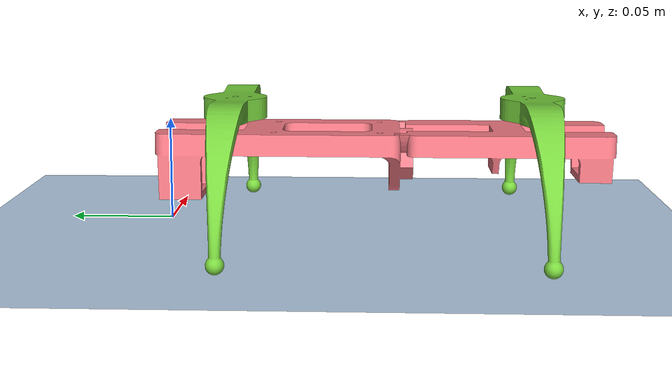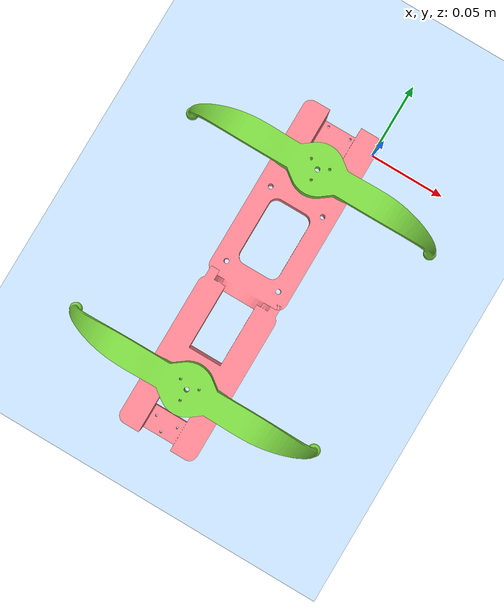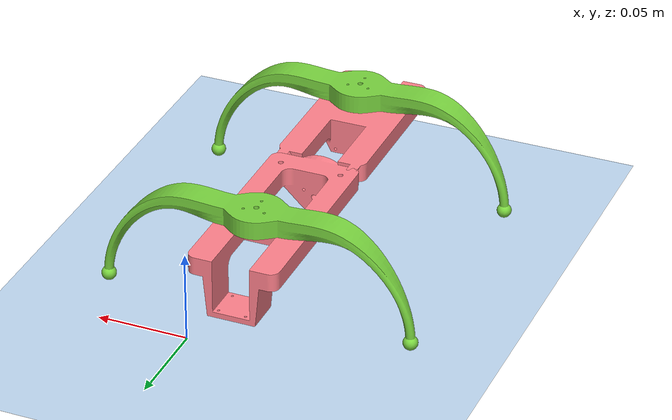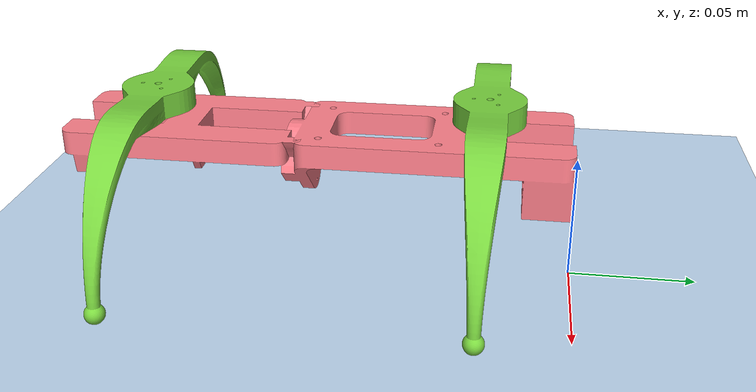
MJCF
<mujoco model="robot_on_ice">
    <compiler angle="radian" coordinate="local"/>
    <option gravity="0 0 -9.81" timestep="0.001"/>

    <asset>
        <!-- Robot assets -->
        <mesh name="controller_torso" file="/projectnb/rlvn/students/rampal11/PATRIQ/EC518-Bark9/envs/PATRIQ/controller_torso.stl" scale="0.001 0.001 0.001"/>
        <mesh name="motor_torso" file="/projectnb/rlvn/students/rampal11/PATRIQ/EC518-Bark9/envs/PATRIQ/motor_torso.stl" scale="0.001 0.001 0.001"/>
        <mesh name="legs" file="/projectnb/rlvn/students/rampal11/PATRIQ/EC518-Bark9/envs/PATRIQ/legs.stl" scale="0.001 0.001 0.001"/>

        <!-- Ice texture for ground -->
        <texture name="ice" type="2d" builtin="checker" width="512" height="512" rgb1="0.8 0.9 1.0" rgb2="0.7 0.8 0.9"/>
        <material name="ice_material" texture="ice" texrepeat="5 5" reflectance="0.6"/>
    </asset>

    <worldbody>
        <!-- Ice Terrain -->
        <geom name="ice_ground" type="plane" pos="0 0 0" size="0 0 0.25" material="ice_material"
              friction="0.01 0.01 0.01" solimp="0.9 0.95 0.001" solref="0.005 1"/>

        <!-- Robot -->
        <body name="controller_torso_body" pos="0 0 0.05" euler="-1.57 3.14 0">
            <joint name="FLOATING" type="free"/>
            <geom type="mesh" mesh="controller_torso" rgba="1.0 0.502 0.545 1"/>

            <!-- Motor torso -->
            <body name="motor_torso_body" pos="0 0 0.11">
                <joint name="z_rotation_joint" type="hinge" axis="0 0 1" pos="0.025 0.02 0" range="-1.57 1.57" damping="0.05"/>
                <geom type="mesh" mesh="motor_torso" rgba="1.0 0.502 0.545 1"/>

                <!-- Back Leg -->
                <body name="back_leg" pos="-0.065 0.0497 0.08" euler="3.14 0 0">
                    <joint axis="0 1 0" damping="0.05" name="LEG2" pos="0.088 0.02 0.015" range="-1.5707963 1.5707963" type="hinge"/>
                    <geom type="mesh" mesh="legs" rgba="0.471 0.824 0.243 1"/>
                </body>
            </body>

            <!-- Front Leg -->
            <body name="front_leg" pos="-0.065 0.0497 0.05" euler="3.14 0 0">
                <joint axis="0 1 0" damping="0.05" name="LEG1" pos="0.088 0.02 0.015" range="-1.5707963 1.5707963" type="hinge"/>
                <geom type="mesh" mesh="legs" rgba="0.471 0.824 0.243 1"/>
            </body>
        </body>

        <!-- Light -->
        <light name="main_light" pos="0 0 5" dir="0 0 -1" diffuse="1 1 1" specular="0.3 0.3 0.3" directional="true"/>
    </worldbody>

    <!-- Actuators -->
    <actuator>
        <motor joint="z_rotation_joint" name="z_rotation_joint_act"/>
        <motor joint="LEG1" name="LEG1_act"/>
        <motor joint="LEG2" name="LEG2_act"/>
    </actuator>
</mujoco>
